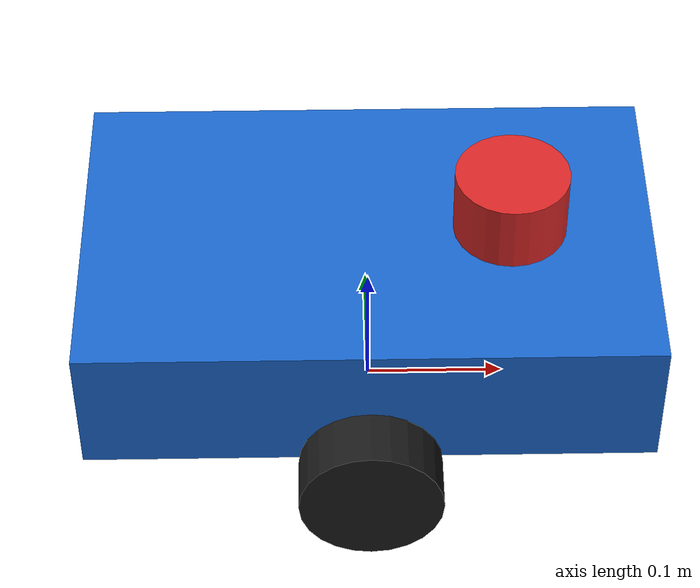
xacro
<?xml version="1.0"?>
<robot xmlns:xacro="http://www.ros.org/wiki/xacro" name="diff_drive_robot">

  <!-- ==================== Simulation Arguments ==================== -->
  <xacro:arg name="gazebo_system" default="ignition"/>
  <xacro:arg name="controllers_yaml" default="config/ros2_controllers.yaml"/>

  <!-- ==================== Materials ==================== -->
  <material name="chassis_blue">
    <color rgba="0.1 0.4 0.8 1.0"/>
  </material>

  <material name="wheel_black">
    <color rgba="0.1 0.1 0.1 1.0"/>
  </material>

  <material name="caster_grey">
    <color rgba="0.6 0.6 0.6 1.0"/>
  </material>

  <material name="lidar_red">
    <color rgba="0.85 0.15 0.15 1.0"/>
  </material>

  <!-- ==================== Base Footprint ==================== -->
  <!-- base_footprint is on the ground at z=0 (massless root link for clean KDL parsing) -->
  <link name="base_footprint"/>

  <joint name="base_footprint_joint" type="fixed">
    <parent link="base_footprint"/>
    <child link="base_link"/>
    <origin xyz="0 0 0.05" rpy="0 0 0"/>
  </joint>

  <!-- ==================== Base Link (Chassis) ==================== -->
  <link name="base_link">
    <visual>
      <origin xyz="0 0 0.05" rpy="0 0 0"/>
      <geometry>
        <box size="0.4 0.25 0.1"/>
      </geometry>
      <material name="chassis_blue"/>
    </visual>
    <collision>
      <origin xyz="0 0 0.05" rpy="0 0 0"/>
      <geometry>
        <box size="0.4 0.25 0.1"/>
      </geometry>
    </collision>
    <inertial>
      <origin xyz="0 0 0.05" rpy="0 0 0"/>
      <mass value="5.0"/>
      <inertia ixx="0.030" ixy="0.0" ixz="0.0" iyy="0.070" iyz="0.0" izz="0.092"/>
    </inertial>
  </link>

  <!-- ==================== Left Wheel ==================== -->
  <joint name="left_wheel_joint" type="continuous">
    <parent link="base_link"/>
    <child link="left_wheel_link"/>
    <origin xyz="0 0.15 0" rpy="0 0 0"/>
    <axis xyz="0 1 0"/>
  </joint>

  <link name="left_wheel_link">
    <visual>
      <origin xyz="0 0 0" rpy="1.57079632679 0 0"/>
      <geometry>
        <cylinder radius="0.05" length="0.04"/>
      </geometry>
      <material name="wheel_black"/>
    </visual>
    <collision>
      <origin xyz="0 0 0" rpy="1.57079632679 0 0"/>
      <geometry>
        <cylinder radius="0.05" length="0.04"/>
      </geometry>
    </collision>
    <inertial>
      <origin xyz="0 0 0" rpy="0 0 0"/>
      <mass value="0.5"/>
      <inertia ixx="0.00038" ixy="0.0" ixz="0.0" iyy="0.000625" iyz="0.0" izz="0.00038"/>
    </inertial>
  </link>

  <!-- ==================== Right Wheel ==================== -->
  <joint name="right_wheel_joint" type="continuous">
    <parent link="base_link"/>
    <child link="right_wheel_link"/>
    <origin xyz="0 -0.15 0" rpy="0 0 0"/>
    <axis xyz="0 1 0"/>
  </joint>

  <link name="right_wheel_link">
    <visual>
      <origin xyz="0 0 0" rpy="1.57079632679 0 0"/>
      <geometry>
        <cylinder radius="0.05" length="0.04"/>
      </geometry>
      <material name="wheel_black"/>
    </visual>
    <collision>
      <origin xyz="0 0 0" rpy="1.57079632679 0 0"/>
      <geometry>
        <cylinder radius="0.05" length="0.04"/>
      </geometry>
    </collision>
    <inertial>
      <origin xyz="0 0 0" rpy="0 0 0"/>
      <mass value="0.5"/>
      <inertia ixx="0.00038" ixy="0.0" ixz="0.0" iyy="0.000625" iyz="0.0" izz="0.00038"/>
    </inertial>
  </link>

  <!-- ==================== Caster Ball ==================== -->
  <joint name="caster_joint" type="fixed">
    <parent link="base_link"/>
    <child link="caster_wheel_link"/>
    <origin xyz="0.15 0 0" rpy="0 0 0"/>
  </joint>

  <link name="caster_wheel_link">
    <visual>
      <origin xyz="0 0 0" rpy="0 0 0"/>
      <geometry>
        <sphere radius="0.05"/>
      </geometry>
      <material name="caster_grey"/>
    </visual>
    <collision>
      <origin xyz="0 0 0" rpy="0 0 0"/>
      <geometry>
        <sphere radius="0.05"/>
      </geometry>
    </collision>
    <inertial>
      <origin xyz="0 0 0" rpy="0 0 0"/>
      <mass value="0.2"/>
      <inertia ixx="0.0002" ixy="0.0" ixz="0.0" iyy="0.0002" iyz="0.0" izz="0.0002"/>
    </inertial>
  </link>

  <!-- ==================== 2D LiDAR Sensor ==================== -->
  <!-- Mounted on top of chassis (+0.10m forward from center, +0.125m above base_link) -->
  <joint name="laser_joint" type="fixed">
    <parent link="base_link"/>
    <child link="laser_link"/>
    <origin xyz="0.10 0 0.125" rpy="0 0 0"/>
  </joint>

  <link name="laser_link">
    <visual>
      <origin xyz="0 0 0" rpy="0 0 0"/>
      <geometry>
        <cylinder radius="0.04" length="0.05"/>
      </geometry>
      <material name="lidar_red"/>
    </visual>
    <collision>
      <origin xyz="0 0 0" rpy="0 0 0"/>
      <geometry>
        <cylinder radius="0.04" length="0.05"/>
      </geometry>
    </collision>
    <inertial>
      <origin xyz="0 0 0" rpy="0 0 0"/>
      <mass value="0.1"/>
      <inertia ixx="0.00005" ixy="0.0" ixz="0.0" iyy="0.00005" iyz="0.0" izz="0.00008"/>
    </inertial>
  </link>

  <!-- ==================== Gazebo Fortress Physics & Visuals ==================== -->
  <gazebo reference="base_link">
    <visual>
      <material>
        <ambient>0.1 0.4 0.8 1.0</ambient>
        <diffuse>0.1 0.4 0.8 1.0</diffuse>
        <specular>0.3 0.3 0.3 1.0</specular>
      </material>
    </visual>
  </gazebo>

  <!-- Drive wheels: High friction for traction without slip -->
  <gazebo reference="left_wheel_link">
    <mu1>1.0</mu1>
    <mu2>1.0</mu2>
    <kp>1000000.0</kp>
    <kd>1.0</kd>
    <minDepth>0.001</minDepth>
    <maxVel>0.1</maxVel>
    <visual>
      <material>
        <ambient>0.1 0.1 0.1 1.0</ambient>
        <diffuse>0.1 0.1 0.1 1.0</diffuse>
        <specular>0.1 0.1 0.1 1.0</specular>
      </material>
    </visual>
  </gazebo>

  <gazebo reference="right_wheel_link">
    <mu1>1.0</mu1>
    <mu2>1.0</mu2>
    <kp>1000000.0</kp>
    <kd>1.0</kd>
    <minDepth>0.001</minDepth>
    <maxVel>0.1</maxVel>
    <visual>
      <material>
        <ambient>0.1 0.1 0.1 1.0</ambient>
        <diffuse>0.1 0.1 0.1 1.0</diffuse>
        <specular>0.1 0.1 0.1 1.0</specular>
      </material>
    </visual>
  </gazebo>

  <!-- Caster ball: Low friction to allow smooth omnidirectional pivoting -->
  <gazebo reference="caster_wheel_link">
    <mu1>0.001</mu1>
    <mu2>0.001</mu2>
    <kp>1000000.0</kp>
    <kd>1.0</kd>
    <visual>
      <material>
        <ambient>0.6 0.6 0.6 1.0</ambient>
        <diffuse>0.6 0.6 0.6 1.0</diffuse>
        <specular>0.2 0.2 0.2 1.0</specular>
      </material>
    </visual>
  </gazebo>

  <!-- Gazebo Fortress 2D LiDAR (gpu_lidar) Plugin -->
  <gazebo reference="laser_link">
    <visual>
      <material>
        <ambient>0.85 0.15 0.15 1.0</ambient>
        <diffuse>0.85 0.15 0.15 1.0</diffuse>
        <specular>0.4 0.4 0.4 1.0</specular>
      </material>
    </visual>
    <sensor name="lidar" type="gpu_lidar">
      <topic>/scan</topic>
      <update_rate>10</update_rate>
      <gz_frame_id>laser_link</gz_frame_id>
      <lidar>
        <scan>
          <horizontal>
            <samples>720</samples>
            <resolution>1</resolution>
            <min_angle>-3.14159265</min_angle>
            <max_angle>3.14159265</max_angle>
          </horizontal>
        </scan>
        <range>
          <min>0.10</min>
          <max>10.0</max>
          <resolution>0.01</resolution>
        </range>
      </lidar>
      <always_on>true</always_on>
      <visualize>true</visualize>
    </sensor>
  </gazebo>

  <!-- ==================== ros2_control Hardware Interface ==================== -->
  <ros2_control name="DiffDriveHardware" type="system">
    <hardware>
      <plugin>ign_ros2_control/IgnitionSystem</plugin>
    </hardware>

    <joint name="left_wheel_joint">
      <command_interface name="velocity">
        <param name="min">-10.0</param>
        <param name="max">10.0</param>
      </command_interface>
      <state_interface name="position"/>
      <state_interface name="velocity"/>
    </joint>

    <joint name="right_wheel_joint">
      <command_interface name="velocity">
        <param name="min">-10.0</param>
        <param name="max">10.0</param>
      </command_interface>
      <state_interface name="position"/>
      <state_interface name="velocity"/>
    </joint>
  </ros2_control>

  <!-- ==================== Gazebo Fortress ros2_control Plugin ==================== -->
  <gazebo>
    <plugin filename="ign_ros2_control-system" name="ign_ros2_control::IgnitionROS2ControlPlugin">
      <parameters>$(arg controllers_yaml)</parameters>
      <ros>
        <remapping>/diff_drive_controller/cmd_vel_unstamped:=/cmd_vel</remapping>
        <remapping>/diff_drive_controller/odom:=/odom</remapping>
      </ros>
    </plugin>
  </gazebo>

</robot>
